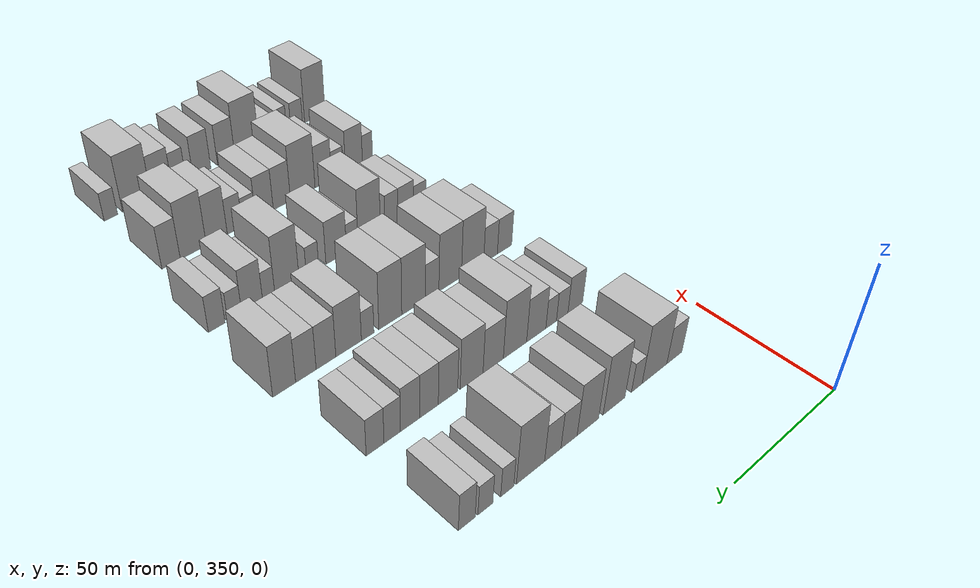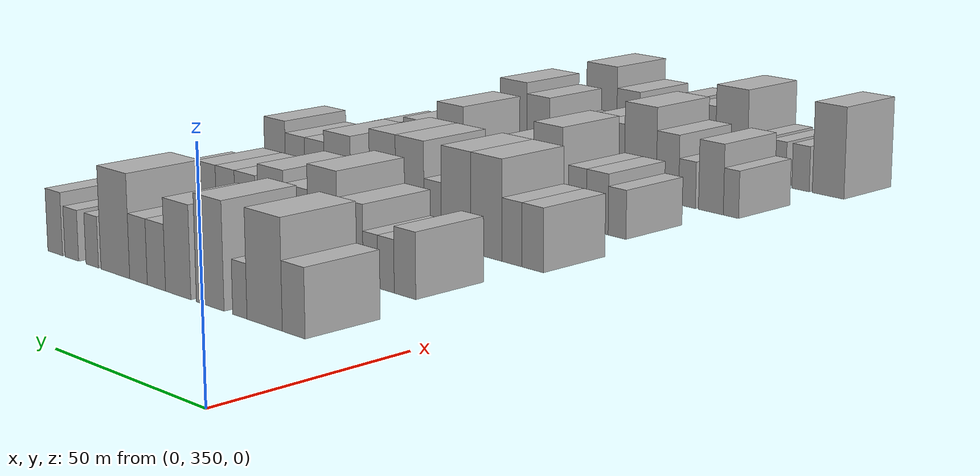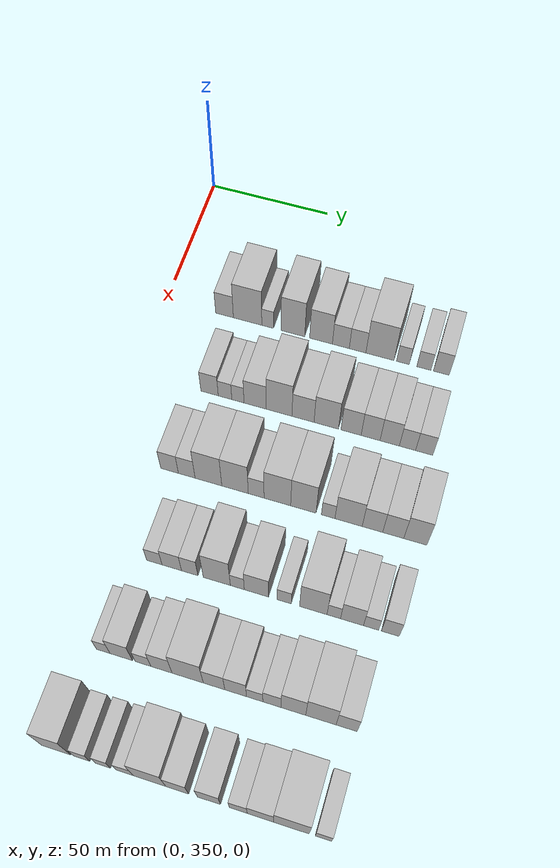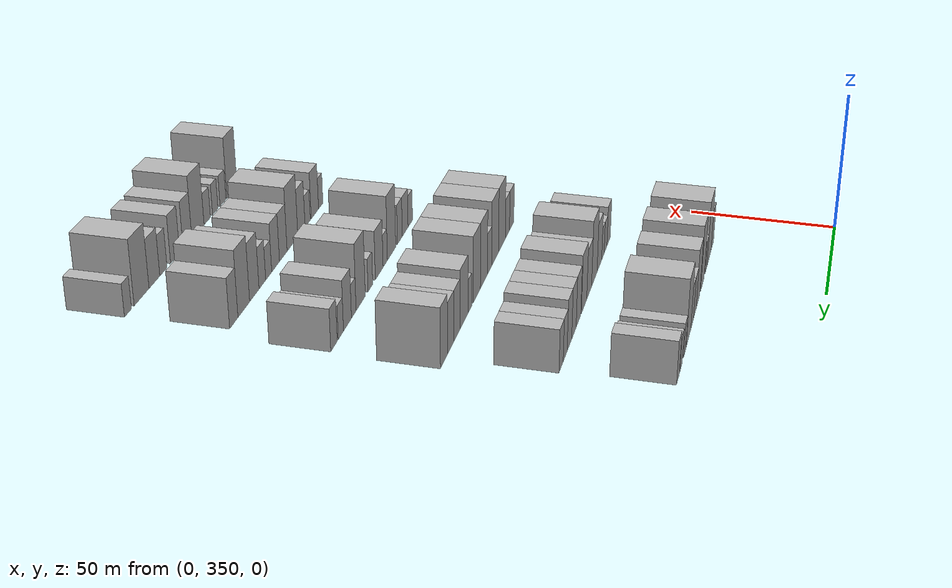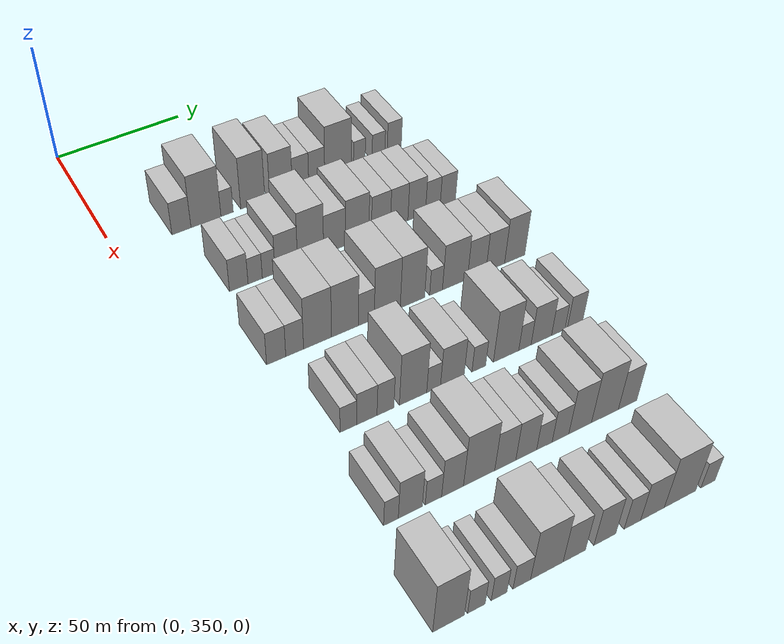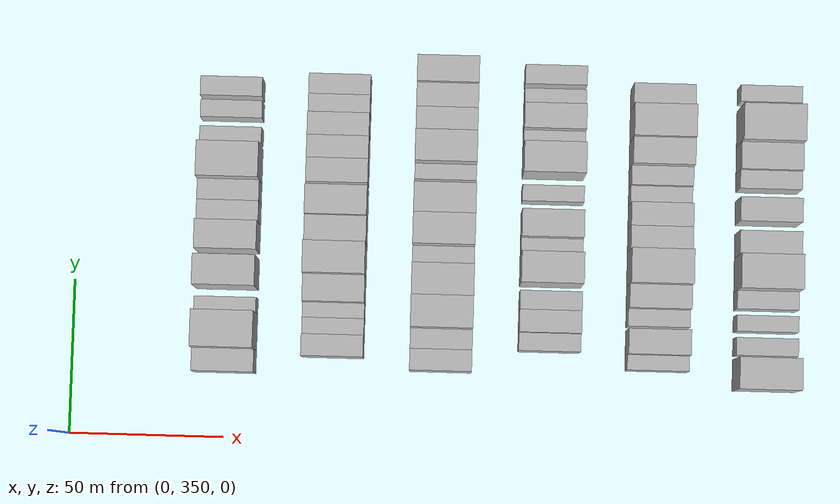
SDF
<sdf version="1.6">
 <world name="default">
  <model name="building_112">
   <static>1</static>
   <pose>50.0000 374.5638 0 0.000000 0.000000 0.000000</pose>
   <link name="link">
    <pose>0 0 7.50 0 0 0</pose>
    <collision name="collision"><geometry><box><size>20.0000 7.4098 15.0000</size></box></geometry></collision>
    <visual name="visual">
     <cast_shadows>0</cast_shadows>
     <geometry><box><size>20.0000 7.4098 15.0000</size></box></geometry>
     <material>
      <script>
       <uri>model://HANNAS_wall/materials/scripts</uri>
       <uri>model://HANNAS_wall/materials/textures</uri>
       <name>vrc/HANNAS_wall</name>
      </script>
     </material>
    </visual>
   </link>
  </model>
  <model name="building_113">
   <static>1</static>
   <pose>50.0000 384.1828 0 0.000000 0.000000 0.000000</pose>
   <link name="link">
    <pose>0 0 12.00 0 0 0</pose>
    <collision name="collision"><geometry><box><size>20.0000 11.8281 24.0000</size></box></geometry></collision>
    <visual name="visual">
     <cast_shadows>0</cast_shadows>
     <geometry><box><size>20.0000 11.8281 24.0000</size></box></geometry>
     <material>
      <script>
       <uri>model://HANNAS_wall/materials/scripts</uri>
       <uri>model://HANNAS_wall/materials/textures</uri>
       <name>vrc/HANNAS_wall</name>
      </script>
     </material>
    </visual>
   </link>
  </model>
  <model name="building_114">
   <static>1</static>
   <pose>50.0000 392.5576 0 0.000000 0.000000 0.000000</pose>
   <link name="link">
    <pose>0 0 6.00 0 0 0</pose>
    <collision name="collision"><geometry><box><size>20.0000 4.9214 12.0000</size></box></geometry></collision>
    <visual name="visual">
     <cast_shadows>0</cast_shadows>
     <geometry><box><size>20.0000 4.9214 12.0000</size></box></geometry>
     <material>
      <script>
       <uri>model://HANNAS_wall/materials/scripts</uri>
       <uri>model://HANNAS_wall/materials/textures</uri>
       <name>vrc/HANNAS_wall</name>
      </script>
     </material>
    </visual>
   </link>
  </model>
  <model name="building_115">
   <static>1</static>
   <pose>50.0000 402.9368 0 0.000000 0.000000 0.000000</pose>
   <link name="link">
    <pose>0 0 12.00 0 0 0</pose>
    <collision name="collision"><geometry><box><size>20.0000 9.8370 24.0000</size></box></geometry></collision>
    <visual name="visual">
     <cast_shadows>0</cast_shadows>
     <geometry><box><size>20.0000 9.8370 24.0000</size></box></geometry>
     <material>
      <script>
       <uri>model://HANNAS_wall/materials/scripts</uri>
       <uri>model://HANNAS_wall/materials/textures</uri>
       <name>vrc/HANNAS_wall</name>
      </script>
     </material>
    </visual>
   </link>
  </model>
  <model name="building_116">
   <static>1</static>
   <pose>50.0000 414.5056 0 0.000000 0.000000 0.000000</pose>
   <link name="link">
    <pose>0 0 10.50 0 0 0</pose>
    <collision name="collision"><geometry><box><size>20.0000 9.3008 21.0000</size></box></geometry></collision>
    <visual name="visual">
     <cast_shadows>0</cast_shadows>
     <geometry><box><size>20.0000 9.3008 21.0000</size></box></geometry>
     <material>
      <script>
       <uri>model://HANNAS_wall/materials/scripts</uri>
       <uri>model://HANNAS_wall/materials/textures</uri>
       <name>vrc/HANNAS_wall</name>
      </script>
     </material>
    </visual>
   </link>
  </model>
  <model name="building_117">
   <static>1</static>
   <pose>50.0000 422.5938 0 0.000000 0.000000 0.000000</pose>
   <link name="link">
    <pose>0 0 7.50 0 0 0</pose>
    <collision name="collision"><geometry><box><size>20.0000 6.8755 15.0000</size></box></geometry></collision>
    <visual name="visual">
     <cast_shadows>0</cast_shadows>
     <geometry><box><size>20.0000 6.8755 15.0000</size></box></geometry>
     <material>
      <script>
       <uri>model://HANNAS_wall/materials/scripts</uri>
       <uri>model://HANNAS_wall/materials/textures</uri>
       <name>vrc/HANNAS_wall</name>
      </script>
     </material>
    </visual>
   </link>
  </model>
  <model name="building_118">
   <static>1</static>
   <pose>50.0000 429.4094 0 0.000000 0.000000 0.000000</pose>
   <link name="link">
    <pose>0 0 7.50 0 0 0</pose>
    <collision name="collision"><geometry><box><size>20.0000 6.7556 15.0000</size></box></geometry></collision>
    <visual name="visual">
     <cast_shadows>0</cast_shadows>
     <geometry><box><size>20.0000 6.7556 15.0000</size></box></geometry>
     <material>
      <script>
       <uri>model://HANNAS_wall/materials/scripts</uri>
       <uri>model://HANNAS_wall/materials/textures</uri>
       <name>vrc/HANNAS_wall</name>
      </script>
     </material>
    </visual>
   </link>
  </model>
  <model name="building_119">
   <static>1</static>
   <pose>50.0000 438.4505 0 0.000000 0.000000 0.000000</pose>
   <link name="link">
    <pose>0 0 12.00 0 0 0</pose>
    <collision name="collision"><geometry><box><size>20.0000 11.3267 24.0000</size></box></geometry></collision>
    <visual name="visual">
     <cast_shadows>0</cast_shadows>
     <geometry><box><size>20.0000 11.3267 24.0000</size></box></geometry>
     <material>
      <script>
       <uri>model://HANNAS_wall/materials/scripts</uri>
       <uri>model://HANNAS_wall/materials/textures</uri>
       <name>vrc/HANNAS_wall</name>
      </script>
     </material>
    </visual>
   </link>
  </model>
  <model name="building_120">
   <static>1</static>
   <pose>50.0000 447.6629 0 0.000000 0.000000 0.000000</pose>
   <link name="link">
    <pose>0 0 6.00 0 0 0</pose>
    <collision name="collision"><geometry><box><size>20.0000 5.0982 12.0000</size></box></geometry></collision>
    <visual name="visual">
     <cast_shadows>0</cast_shadows>
     <geometry><box><size>20.0000 5.0982 12.0000</size></box></geometry>
     <material>
      <script>
       <uri>model://HANNAS_wall/materials/scripts</uri>
       <uri>model://HANNAS_wall/materials/textures</uri>
       <name>vrc/HANNAS_wall</name>
      </script>
     </material>
    </visual>
   </link>
  </model>
  <model name="building_121">
   <static>1</static>
   <pose>50.0000 456.0346 0 0.000000 0.000000 0.000000</pose>
   <link name="link">
    <pose>0 0 6.00 0 0 0</pose>
    <collision name="collision"><geometry><box><size>20.0000 5.6452 12.0000</size></box></geometry></collision>
    <visual name="visual">
     <cast_shadows>0</cast_shadows>
     <geometry><box><size>20.0000 5.6452 12.0000</size></box></geometry>
     <material>
      <script>
       <uri>model://HANNAS_wall/materials/scripts</uri>
       <uri>model://HANNAS_wall/materials/textures</uri>
       <name>vrc/HANNAS_wall</name>
      </script>
     </material>
    </visual>
   </link>
  </model>
  <model name="building_122">
   <static>1</static>
   <pose>50.0000 462.9753 0 0.000000 0.000000 0.000000</pose>
   <link name="link">
    <pose>0 0 7.50 0 0 0</pose>
    <collision name="collision"><geometry><box><size>20.0000 6.2363 15.0000</size></box></geometry></collision>
    <visual name="visual">
     <cast_shadows>0</cast_shadows>
     <geometry><box><size>20.0000 6.2363 15.0000</size></box></geometry>
     <material>
      <script>
       <uri>model://HANNAS_wall/materials/scripts</uri>
       <uri>model://HANNAS_wall/materials/textures</uri>
       <name>vrc/HANNAS_wall</name>
      </script>
     </material>
    </visual>
   </link>
  </model>
  <model name="building_241">
   <static>1</static>
   <pose>85.0000 380.1322 0 0.000000 0.000000 0.000000</pose>
   <link name="link">
    <pose>0 0 7.50 0 0 0</pose>
    <collision name="collision"><geometry><box><size>20.0000 7.0334 15.0000</size></box></geometry></collision>
    <visual name="visual">
     <cast_shadows>0</cast_shadows>
     <geometry><box><size>20.0000 7.0334 15.0000</size></box></geometry>
     <material>
      <script>
       <uri>model://HANNAS_wall/materials/scripts</uri>
       <uri>model://HANNAS_wall/materials/textures</uri>
       <name>vrc/HANNAS_wall</name>
      </script>
     </material>
    </visual>
   </link>
  </model>
  <model name="building_242">
   <static>1</static>
   <pose>85.0000 386.3754 0 0.000000 0.000000 0.000000</pose>
   <link name="link">
    <pose>0 0 6.00 0 0 0</pose>
    <collision name="collision"><geometry><box><size>20.0000 5.4530 12.0000</size></box></geometry></collision>
    <visual name="visual">
     <cast_shadows>0</cast_shadows>
     <geometry><box><size>20.0000 5.4530 12.0000</size></box></geometry>
     <material>
      <script>
       <uri>model://HANNAS_wall/materials/scripts</uri>
       <uri>model://HANNAS_wall/materials/textures</uri>
       <name>vrc/HANNAS_wall</name>
      </script>
     </material>
    </visual>
   </link>
  </model>
  <model name="building_243">
   <static>1</static>
   <pose>85.0000 391.5564 0 0.000000 0.000000 0.000000</pose>
   <link name="link">
    <pose>0 0 6.00 0 0 0</pose>
    <collision name="collision"><geometry><box><size>20.0000 4.9091 12.0000</size></box></geometry></collision>
    <visual name="visual">
     <cast_shadows>0</cast_shadows>
     <geometry><box><size>20.0000 4.9091 12.0000</size></box></geometry>
     <material>
      <script>
       <uri>model://HANNAS_wall/materials/scripts</uri>
       <uri>model://HANNAS_wall/materials/textures</uri>
       <name>vrc/HANNAS_wall</name>
      </script>
     </material>
    </visual>
   </link>
  </model>
  <model name="building_244">
   <static>1</static>
   <pose>85.0000 398.3999 0 0.000000 0.000000 0.000000</pose>
   <link name="link">
    <pose>0 0 9.00 0 0 0</pose>
    <collision name="collision"><geometry><box><size>20.0000 8.7778 18.0000</size></box></geometry></collision>
    <visual name="visual">
     <cast_shadows>0</cast_shadows>
     <geometry><box><size>20.0000 8.7778 18.0000</size></box></geometry>
     <material>
      <script>
       <uri>model://HANNAS_wall/materials/scripts</uri>
       <uri>model://HANNAS_wall/materials/textures</uri>
       <name>vrc/HANNAS_wall</name>
      </script>
     </material>
    </visual>
   </link>
  </model>
  <model name="building_245">
   <static>1</static>
   <pose>85.0000 407.9367 0 0.000000 0.000000 0.000000</pose>
   <link name="link">
    <pose>0 0 12.00 0 0 0</pose>
    <collision name="collision"><geometry><box><size>20.0000 10.2958 24.0000</size></box></geometry></collision>
    <visual name="visual">
     <cast_shadows>0</cast_shadows>
     <geometry><box><size>20.0000 10.2958 24.0000</size></box></geometry>
     <material>
      <script>
       <uri>model://HANNAS_wall/materials/scripts</uri>
       <uri>model://HANNAS_wall/materials/textures</uri>
       <name>vrc/HANNAS_wall</name>
      </script>
     </material>
    </visual>
   </link>
  </model>
  <model name="building_246">
   <static>1</static>
   <pose>85.0000 417.4528 0 0.000000 0.000000 0.000000</pose>
   <link name="link">
    <pose>0 0 9.00 0 0 0</pose>
    <collision name="collision"><geometry><box><size>20.0000 8.7366 18.0000</size></box></geometry></collision>
    <visual name="visual">
     <cast_shadows>0</cast_shadows>
     <geometry><box><size>20.0000 8.7366 18.0000</size></box></geometry>
     <material>
      <script>
       <uri>model://HANNAS_wall/materials/scripts</uri>
       <uri>model://HANNAS_wall/materials/textures</uri>
       <name>vrc/HANNAS_wall</name>
      </script>
     </material>
    </visual>
   </link>
  </model>
  <model name="building_247">
   <static>1</static>
   <pose>85.0000 426.6122 0 0.000000 0.000000 0.000000</pose>
   <link name="link">
    <pose>0 0 10.50 0 0 0</pose>
    <collision name="collision"><geometry><box><size>20.0000 9.5821 21.0000</size></box></geometry></collision>
    <visual name="visual">
     <cast_shadows>0</cast_shadows>
     <geometry><box><size>20.0000 9.5821 21.0000</size></box></geometry>
     <material>
      <script>
       <uri>model://HANNAS_wall/materials/scripts</uri>
       <uri>model://HANNAS_wall/materials/textures</uri>
       <name>vrc/HANNAS_wall</name>
      </script>
     </material>
    </visual>
   </link>
  </model>
  <model name="building_248">
   <static>1</static>
   <pose>85.0000 436.3314 0 0.000000 0.000000 0.000000</pose>
   <link name="link">
    <pose>0 0 9.00 0 0 0</pose>
    <collision name="collision"><geometry><box><size>20.0000 7.8563 18.0000</size></box></geometry></collision>
    <visual name="visual">
     <cast_shadows>0</cast_shadows>
     <geometry><box><size>20.0000 7.8563 18.0000</size></box></geometry>
     <material>
      <script>
       <uri>model://HANNAS_wall/materials/scripts</uri>
       <uri>model://HANNAS_wall/materials/textures</uri>
       <name>vrc/HANNAS_wall</name>
      </script>
     </material>
    </visual>
   </link>
  </model>
  <model name="building_249">
   <static>1</static>
   <pose>85.0000 443.9352 0 0.000000 0.000000 0.000000</pose>
   <link name="link">
    <pose>0 0 9.00 0 0 0</pose>
    <collision name="collision"><geometry><box><size>20.0000 7.3513 18.0000</size></box></geometry></collision>
    <visual name="visual">
     <cast_shadows>0</cast_shadows>
     <geometry><box><size>20.0000 7.3513 18.0000</size></box></geometry>
     <material>
      <script>
       <uri>model://HANNAS_wall/materials/scripts</uri>
       <uri>model://HANNAS_wall/materials/textures</uri>
       <name>vrc/HANNAS_wall</name>
      </script>
     </material>
    </visual>
   </link>
  </model>
  <model name="building_250">
   <static>1</static>
   <pose>85.0000 451.3383 0 0.000000 0.000000 0.000000</pose>
   <link name="link">
    <pose>0 0 9.00 0 0 0</pose>
    <collision name="collision"><geometry><box><size>20.0000 7.4550 18.0000</size></box></geometry></collision>
    <visual name="visual">
     <cast_shadows>0</cast_shadows>
     <geometry><box><size>20.0000 7.4550 18.0000</size></box></geometry>
     <material>
      <script>
       <uri>model://HANNAS_wall/materials/scripts</uri>
       <uri>model://HANNAS_wall/materials/textures</uri>
       <name>vrc/HANNAS_wall</name>
      </script>
     </material>
    </visual>
   </link>
  </model>
  <model name="building_251">
   <static>1</static>
   <pose>85.0000 458.1806 0 0.000000 0.000000 0.000000</pose>
   <link name="link">
    <pose>0 0 7.50 0 0 0</pose>
    <collision name="collision"><geometry><box><size>20.0000 6.2295 15.0000</size></box></geometry></collision>
    <visual name="visual">
     <cast_shadows>0</cast_shadows>
     <geometry><box><size>20.0000 6.2295 15.0000</size></box></geometry>
     <material>
      <script>
       <uri>model://HANNAS_wall/materials/scripts</uri>
       <uri>model://HANNAS_wall/materials/textures</uri>
       <name>vrc/HANNAS_wall</name>
      </script>
     </material>
    </visual>
   </link>
  </model>
  <model name="building_252">
   <static>1</static>
   <pose>85.0000 464.5963 0 0.000000 0.000000 0.000000</pose>
   <link name="link">
    <pose>0 0 7.50 0 0 0</pose>
    <collision name="collision"><geometry><box><size>20.0000 6.6018 15.0000</size></box></geometry></collision>
    <visual name="visual">
     <cast_shadows>0</cast_shadows>
     <geometry><box><size>20.0000 6.6018 15.0000</size></box></geometry>
     <material>
      <script>
       <uri>model://HANNAS_wall/materials/scripts</uri>
       <uri>model://HANNAS_wall/materials/textures</uri>
       <name>vrc/HANNAS_wall</name>
      </script>
     </material>
    </visual>
   </link>
  </model>
  <model name="building_372">
   <static>1</static>
   <pose>120.0000 376.3832 0 0.000000 0.000000 0.000000</pose>
   <link name="link">
    <pose>0 0 7.50 0 0 0</pose>
    <collision name="collision"><geometry><box><size>20.0000 6.9399 15.0000</size></box></geometry></collision>
    <visual name="visual">
     <cast_shadows>0</cast_shadows>
     <geometry><box><size>20.0000 6.9399 15.0000</size></box></geometry>
     <material>
      <script>
       <uri>model://HANNAS_wall/materials/scripts</uri>
       <uri>model://HANNAS_wall/materials/textures</uri>
       <name>vrc/HANNAS_wall</name>
      </script>
     </material>
    </visual>
   </link>
  </model>
  <model name="building_373">
   <static>1</static>
   <pose>120.0000 383.1151 0 0.000000 0.000000 0.000000</pose>
   <link name="link">
    <pose>0 0 7.50 0 0 0</pose>
    <collision name="collision"><geometry><box><size>20.0000 6.5238 15.0000</size></box></geometry></collision>
    <visual name="visual">
     <cast_shadows>0</cast_shadows>
     <geometry><box><size>20.0000 6.5238 15.0000</size></box></geometry>
     <material>
      <script>
       <uri>model://HANNAS_wall/materials/scripts</uri>
       <uri>model://HANNAS_wall/materials/textures</uri>
       <name>vrc/HANNAS_wall</name>
      </script>
     </material>
    </visual>
   </link>
  </model>
  <model name="building_374">
   <static>1</static>
   <pose>120.0000 391.5605 0 0.000000 0.000000 0.000000</pose>
   <link name="link">
    <pose>0 0 12.00 0 0 0</pose>
    <collision name="collision"><geometry><box><size>20.0000 10.3670 24.0000</size></box></geometry></collision>
    <visual name="visual">
     <cast_shadows>0</cast_shadows>
     <geometry><box><size>20.0000 10.3670 24.0000</size></box></geometry>
     <material>
      <script>
       <uri>model://HANNAS_wall/materials/scripts</uri>
       <uri>model://HANNAS_wall/materials/textures</uri>
       <name>vrc/HANNAS_wall</name>
      </script>
     </material>
    </visual>
   </link>
  </model>
  <model name="building_375">
   <static>1</static>
   <pose>120.0000 401.8419 0 0.000000 0.000000 0.000000</pose>
   <link name="link">
    <pose>0 0 12.00 0 0 0</pose>
    <collision name="collision"><geometry><box><size>20.0000 10.1957 24.0000</size></box></geometry></collision>
    <visual name="visual">
     <cast_shadows>0</cast_shadows>
     <geometry><box><size>20.0000 10.1957 24.0000</size></box></geometry>
     <material>
      <script>
       <uri>model://HANNAS_wall/materials/scripts</uri>
       <uri>model://HANNAS_wall/materials/textures</uri>
       <name>vrc/HANNAS_wall</name>
      </script>
     </material>
    </visual>
   </link>
  </model>
  <model name="building_376">
   <static>1</static>
   <pose>120.0000 409.9647 0 0.000000 0.000000 0.000000</pose>
   <link name="link">
    <pose>0 0 7.50 0 0 0</pose>
    <collision name="collision"><geometry><box><size>20.0000 6.0499 15.0000</size></box></geometry></collision>
    <visual name="visual">
     <cast_shadows>0</cast_shadows>
     <geometry><box><size>20.0000 6.0499 15.0000</size></box></geometry>
     <material>
      <script>
       <uri>model://HANNAS_wall/materials/scripts</uri>
       <uri>model://HANNAS_wall/materials/textures</uri>
       <name>vrc/HANNAS_wall</name>
      </script>
     </material>
    </visual>
   </link>
  </model>
  <model name="building_377">
   <static>1</static>
   <pose>120.0000 418.0530 0 0.000000 0.000000 0.000000</pose>
   <link name="link">
    <pose>0 0 12.00 0 0 0</pose>
    <collision name="collision"><geometry><box><size>20.0000 10.1268 24.0000</size></box></geometry></collision>
    <visual name="visual">
     <cast_shadows>0</cast_shadows>
     <geometry><box><size>20.0000 10.1268 24.0000</size></box></geometry>
     <material>
      <script>
       <uri>model://HANNAS_wall/materials/scripts</uri>
       <uri>model://HANNAS_wall/materials/textures</uri>
       <name>vrc/HANNAS_wall</name>
      </script>
     </material>
    </visual>
   </link>
  </model>
  <model name="building_378">
   <static>1</static>
   <pose>120.0000 427.9381 0 0.000000 0.000000 0.000000</pose>
   <link name="link">
    <pose>0 0 12.00 0 0 0</pose>
    <collision name="collision"><geometry><box><size>20.0000 9.6433 24.0000</size></box></geometry></collision>
    <visual name="visual">
     <cast_shadows>0</cast_shadows>
     <geometry><box><size>20.0000 9.6433 24.0000</size></box></geometry>
     <material>
      <script>
       <uri>model://HANNAS_wall/materials/scripts</uri>
       <uri>model://HANNAS_wall/materials/textures</uri>
       <name>vrc/HANNAS_wall</name>
      </script>
     </material>
    </visual>
   </link>
  </model>
  <model name="building_379">
   <static>1</static>
   <pose>120.0000 437.3192 0 0.000000 0.000000 0.000000</pose>
   <link name="link">
    <pose>0 0 6.00 0 0 0</pose>
    <collision name="collision"><geometry><box><size>20.0000 5.1189 12.0000</size></box></geometry></collision>
    <visual name="visual">
     <cast_shadows>0</cast_shadows>
     <geometry><box><size>20.0000 5.1189 12.0000</size></box></geometry>
     <material>
      <script>
       <uri>model://HANNAS_wall/materials/scripts</uri>
       <uri>model://HANNAS_wall/materials/textures</uri>
       <name>vrc/HANNAS_wall</name>
      </script>
     </material>
    </visual>
   </link>
  </model>
  <model name="building_380">
   <static>1</static>
   <pose>120.0000 444.9828 0 0.000000 0.000000 0.000000</pose>
   <link name="link">
    <pose>0 0 10.50 0 0 0</pose>
    <collision name="collision"><geometry><box><size>20.0000 10.2082 21.0000</size></box></geometry></collision>
    <visual name="visual">
     <cast_shadows>0</cast_shadows>
     <geometry><box><size>20.0000 10.2082 21.0000</size></box></geometry>
     <material>
      <script>
       <uri>model://HANNAS_wall/materials/scripts</uri>
       <uri>model://HANNAS_wall/materials/textures</uri>
       <name>vrc/HANNAS_wall</name>
      </script>
     </material>
    </visual>
   </link>
  </model>
  <model name="building_381">
   <static>1</static>
   <pose>120.0000 453.9038 0 0.000000 0.000000 0.000000</pose>
   <link name="link">
    <pose>0 0 9.00 0 0 0</pose>
    <collision name="collision"><geometry><box><size>20.0000 7.6338 18.0000</size></box></geometry></collision>
    <visual name="visual">
     <cast_shadows>0</cast_shadows>
     <geometry><box><size>20.0000 7.6338 18.0000</size></box></geometry>
     <material>
      <script>
       <uri>model://HANNAS_wall/materials/scripts</uri>
       <uri>model://HANNAS_wall/materials/textures</uri>
       <name>vrc/HANNAS_wall</name>
      </script>
     </material>
    </visual>
   </link>
  </model>
  <model name="building_382">
   <static>1</static>
   <pose>120.0000 461.6109 0 0.000000 0.000000 0.000000</pose>
   <link name="link">
    <pose>0 0 9.00 0 0 0</pose>
    <collision name="collision"><geometry><box><size>20.0000 7.7805 18.0000</size></box></geometry></collision>
    <visual name="visual">
     <cast_shadows>0</cast_shadows>
     <geometry><box><size>20.0000 7.7805 18.0000</size></box></geometry>
     <material>
      <script>
       <uri>model://HANNAS_wall/materials/scripts</uri>
       <uri>model://HANNAS_wall/materials/textures</uri>
       <name>vrc/HANNAS_wall</name>
      </script>
     </material>
    </visual>
   </link>
  </model>
  <model name="building_383">
   <static>1</static>
   <pose>120.0000 469.7615 0 0.000000 0.000000 0.000000</pose>
   <link name="link">
    <pose>0 0 10.50 0 0 0</pose>
    <collision name="collision"><geometry><box><size>20.0000 8.5207 21.0000</size></box></geometry></collision>
    <visual name="visual">
     <cast_shadows>0</cast_shadows>
     <geometry><box><size>20.0000 8.5207 21.0000</size></box></geometry>
     <material>
      <script>
       <uri>model://HANNAS_wall/materials/scripts</uri>
       <uri>model://HANNAS_wall/materials/textures</uri>
       <name>vrc/HANNAS_wall</name>
      </script>
     </material>
    </visual>
   </link>
  </model>
  <model name="building_503">
   <static>1</static>
   <pose>155.0000 383.1769 0 0.000000 0.000000 0.000000</pose>
   <link name="link">
    <pose>0 0 6.00 0 0 0</pose>
    <collision name="collision"><geometry><box><size>20.0000 5.8317 12.0000</size></box></geometry></collision>
    <visual name="visual">
     <cast_shadows>0</cast_shadows>
     <geometry><box><size>20.0000 5.8317 12.0000</size></box></geometry>
     <material>
      <script>
       <uri>model://HANNAS_wall/materials/scripts</uri>
       <uri>model://HANNAS_wall/materials/textures</uri>
       <name>vrc/HANNAS_wall</name>
      </script>
     </material>
    </visual>
   </link>
  </model>
  <model name="building_504">
   <static>1</static>
   <pose>155.0000 389.7508 0 0.000000 0.000000 0.000000</pose>
   <link name="link">
    <pose>0 0 7.50 0 0 0</pose>
    <collision name="collision"><geometry><box><size>20.0000 7.3161 15.0000</size></box></geometry></collision>
    <visual name="visual">
     <cast_shadows>0</cast_shadows>
     <geometry><box><size>20.0000 7.3161 15.0000</size></box></geometry>
     <material>
      <script>
       <uri>model://HANNAS_wall/materials/scripts</uri>
       <uri>model://HANNAS_wall/materials/textures</uri>
       <name>vrc/HANNAS_wall</name>
      </script>
     </material>
    </visual>
   </link>
  </model>
  <model name="building_505">
   <static>1</static>
   <pose>155.0000 396.4655 0 0.000000 0.000000 0.000000</pose>
   <link name="link">
    <pose>0 0 7.50 0 0 0</pose>
    <collision name="collision"><geometry><box><size>20.0000 6.1133 15.0000</size></box></geometry></collision>
    <visual name="visual">
     <cast_shadows>0</cast_shadows>
     <geometry><box><size>20.0000 6.1133 15.0000</size></box></geometry>
     <material>
      <script>
       <uri>model://HANNAS_wall/materials/scripts</uri>
       <uri>model://HANNAS_wall/materials/textures</uri>
       <name>vrc/HANNAS_wall</name>
      </script>
     </material>
    </visual>
   </link>
  </model>
  <model name="building_506">
   <static>1</static>
   <pose>155.0000 406.5471 0 0.000000 0.000000 0.000000</pose>
   <link name="link">
    <pose>0 0 12.00 0 0 0</pose>
    <collision name="collision"><geometry><box><size>20.0000 10.0500 24.0000</size></box></geometry></collision>
    <visual name="visual">
     <cast_shadows>0</cast_shadows>
     <geometry><box><size>20.0000 10.0500 24.0000</size></box></geometry>
     <material>
      <script>
       <uri>model://HANNAS_wall/materials/scripts</uri>
       <uri>model://HANNAS_wall/materials/textures</uri>
       <name>vrc/HANNAS_wall</name>
      </script>
     </material>
    </visual>
   </link>
  </model>
  <model name="building_507">
   <static>1</static>
   <pose>155.0000 414.1391 0 0.000000 0.000000 0.000000</pose>
   <link name="link">
    <pose>0 0 6.00 0 0 0</pose>
    <collision name="collision"><geometry><box><size>20.0000 5.1340 12.0000</size></box></geometry></collision>
    <visual name="visual">
     <cast_shadows>0</cast_shadows>
     <geometry><box><size>20.0000 5.1340 12.0000</size></box></geometry>
     <material>
      <script>
       <uri>model://HANNAS_wall/materials/scripts</uri>
       <uri>model://HANNAS_wall/materials/textures</uri>
       <name>vrc/HANNAS_wall</name>
      </script>
     </material>
    </visual>
   </link>
  </model>
  <model name="building_508">
   <static>1</static>
   <pose>155.0000 421.1709 0 0.000000 0.000000 0.000000</pose>
   <link name="link">
    <pose>0 0 9.00 0 0 0</pose>
    <collision name="collision"><geometry><box><size>20.0000 8.9297 18.0000</size></box></geometry></collision>
    <visual name="visual">
     <cast_shadows>0</cast_shadows>
     <geometry><box><size>20.0000 8.9297 18.0000</size></box></geometry>
     <material>
      <script>
       <uri>model://HANNAS_wall/materials/scripts</uri>
       <uri>model://HANNAS_wall/materials/textures</uri>
       <name>vrc/HANNAS_wall</name>
      </script>
     </material>
    </visual>
   </link>
  </model>
  <model name="building_509">
   <static>1</static>
   <pose>155.0000 431.2673 0 0.000000 0.000000 0.000000</pose>
   <link name="link">
    <pose>0 0 6.00 0 0 0</pose>
    <collision name="collision"><geometry><box><size>20.0000 5.2630 12.0000</size></box></geometry></collision>
    <visual name="visual">
     <cast_shadows>0</cast_shadows>
     <geometry><box><size>20.0000 5.2630 12.0000</size></box></geometry>
     <material>
      <script>
       <uri>model://HANNAS_wall/materials/scripts</uri>
       <uri>model://HANNAS_wall/materials/textures</uri>
       <name>vrc/HANNAS_wall</name>
      </script>
     </material>
    </visual>
   </link>
  </model>
  <model name="building_510">
   <static>1</static>
   <pose>155.0000 441.8738 0 0.000000 0.000000 0.000000</pose>
   <link name="link">
    <pose>0 0 12.00 0 0 0</pose>
    <collision name="collision"><geometry><box><size>20.0000 9.9502 24.0000</size></box></geometry></collision>
    <visual name="visual">
     <cast_shadows>0</cast_shadows>
     <geometry><box><size>20.0000 9.9502 24.0000</size></box></geometry>
     <material>
      <script>
       <uri>model://HANNAS_wall/materials/scripts</uri>
       <uri>model://HANNAS_wall/materials/textures</uri>
       <name>vrc/HANNAS_wall</name>
      </script>
     </material>
    </visual>
   </link>
  </model>
  <model name="building_511">
   <static>1</static>
   <pose>155.0000 449.2796 0 0.000000 0.000000 0.000000</pose>
   <link name="link">
    <pose>0 0 6.00 0 0 0</pose>
    <collision name="collision"><geometry><box><size>20.0000 4.8613 12.0000</size></box></geometry></collision>
    <visual name="visual">
     <cast_shadows>0</cast_shadows>
     <geometry><box><size>20.0000 4.8613 12.0000</size></box></geometry>
     <material>
      <script>
       <uri>model://HANNAS_wall/materials/scripts</uri>
       <uri>model://HANNAS_wall/materials/textures</uri>
       <name>vrc/HANNAS_wall</name>
      </script>
     </material>
    </visual>
   </link>
  </model>
  <model name="building_512">
   <static>1</static>
   <pose>155.0000 455.8241 0 0.000000 0.000000 0.000000</pose>
   <link name="link">
    <pose>0 0 9.00 0 0 0</pose>
    <collision name="collision"><geometry><box><size>20.0000 8.2276 18.0000</size></box></geometry></collision>
    <visual name="visual">
     <cast_shadows>0</cast_shadows>
     <geometry><box><size>20.0000 8.2276 18.0000</size></box></geometry>
     <material>
      <script>
       <uri>model://HANNAS_wall/materials/scripts</uri>
       <uri>model://HANNAS_wall/materials/textures</uri>
       <name>vrc/HANNAS_wall</name>
      </script>
     </material>
    </visual>
   </link>
  </model>
  <model name="building_513">
   <static>1</static>
   <pose>155.0000 462.6363 0 0.000000 0.000000 0.000000</pose>
   <link name="link">
    <pose>0 0 6.00 0 0 0</pose>
    <collision name="collision"><geometry><box><size>20.0000 5.3967 12.0000</size></box></geometry></collision>
    <visual name="visual">
     <cast_shadows>0</cast_shadows>
     <geometry><box><size>20.0000 5.3967 12.0000</size></box></geometry>
     <material>
      <script>
       <uri>model://HANNAS_wall/materials/scripts</uri>
       <uri>model://HANNAS_wall/materials/textures</uri>
       <name>vrc/HANNAS_wall</name>
      </script>
     </material>
    </visual>
   </link>
  </model>
  <model name="building_514">
   <static>1</static>
   <pose>155.0000 469.4903 0 0.000000 0.000000 0.000000</pose>
   <link name="link">
    <pose>0 0 7.50 0 0 0</pose>
    <collision name="collision"><geometry><box><size>20.0000 6.3113 15.0000</size></box></geometry></collision>
    <visual name="visual">
     <cast_shadows>0</cast_shadows>
     <geometry><box><size>20.0000 6.3113 15.0000</size></box></geometry>
     <material>
      <script>
       <uri>model://HANNAS_wall/materials/scripts</uri>
       <uri>model://HANNAS_wall/materials/textures</uri>
       <name>vrc/HANNAS_wall</name>
      </script>
     </material>
    </visual>
   </link>
  </model>
  <model name="building_629">
   <static>1</static>
   <pose>190.0000 377.4236 0 0.000000 0.000000 0.000000</pose>
   <link name="link">
    <pose>0 0 6.00 0 0 0</pose>
    <collision name="collision"><geometry><box><size>20.0000 4.9495 12.0000</size></box></geometry></collision>
    <visual name="visual">
     <cast_shadows>0</cast_shadows>
     <geometry><box><size>20.0000 4.9495 12.0000</size></box></geometry>
     <material>
      <script>
       <uri>model://HANNAS_wall/materials/scripts</uri>
       <uri>model://HANNAS_wall/materials/textures</uri>
       <name>vrc/HANNAS_wall</name>
      </script>
     </material>
    </visual>
   </link>
  </model>
  <model name="building_630">
   <static>1</static>
   <pose>190.0000 383.9739 0 0.000000 0.000000 0.000000</pose>
   <link name="link">
    <pose>0 0 9.00 0 0 0</pose>
    <collision name="collision"><geometry><box><size>20.0000 8.1513 18.0000</size></box></geometry></collision>
    <visual name="visual">
     <cast_shadows>0</cast_shadows>
     <geometry><box><size>20.0000 8.1513 18.0000</size></box></geometry>
     <material>
      <script>
       <uri>model://HANNAS_wall/materials/scripts</uri>
       <uri>model://HANNAS_wall/materials/textures</uri>
       <name>vrc/HANNAS_wall</name>
      </script>
     </material>
    </visual>
   </link>
  </model>
  <model name="building_631">
   <static>1</static>
   <pose>190.0000 391.8775 0 0.000000 0.000000 0.000000</pose>
   <link name="link">
    <pose>0 0 6.00 0 0 0</pose>
    <collision name="collision"><geometry><box><size>20.0000 5.6558 12.0000</size></box></geometry></collision>
    <visual name="visual">
     <cast_shadows>0</cast_shadows>
     <geometry><box><size>20.0000 5.6558 12.0000</size></box></geometry>
     <material>
      <script>
       <uri>model://HANNAS_wall/materials/scripts</uri>
       <uri>model://HANNAS_wall/materials/textures</uri>
       <name>vrc/HANNAS_wall</name>
      </script>
     </material>
    </visual>
   </link>
  </model>
  <model name="building_632">
   <static>1</static>
   <pose>190.0000 398.5282 0 0.000000 0.000000 0.000000</pose>
   <link name="link">
    <pose>0 0 9.00 0 0 0</pose>
    <collision name="collision"><geometry><box><size>20.0000 7.6456 18.0000</size></box></geometry></collision>
    <visual name="visual">
     <cast_shadows>0</cast_shadows>
     <geometry><box><size>20.0000 7.6456 18.0000</size></box></geometry>
     <material>
      <script>
       <uri>model://HANNAS_wall/materials/scripts</uri>
       <uri>model://HANNAS_wall/materials/textures</uri>
       <name>vrc/HANNAS_wall</name>
      </script>
     </material>
    </visual>
   </link>
  </model>
  <model name="building_633">
   <static>1</static>
   <pose>190.0000 407.9203 0 0.000000 0.000000 0.000000</pose>
   <link name="link">
    <pose>0 0 12.00 0 0 0</pose>
    <collision name="collision"><geometry><box><size>20.0000 11.1386 24.0000</size></box></geometry></collision>
    <visual name="visual">
     <cast_shadows>0</cast_shadows>
     <geometry><box><size>20.0000 11.1386 24.0000</size></box></geometry>
     <material>
      <script>
       <uri>model://HANNAS_wall/materials/scripts</uri>
       <uri>model://HANNAS_wall/materials/textures</uri>
       <name>vrc/HANNAS_wall</name>
      </script>
     </material>
    </visual>
   </link>
  </model>
  <model name="building_634">
   <static>1</static>
   <pose>190.0000 417.3067 0 0.000000 0.000000 0.000000</pose>
   <link name="link">
    <pose>0 0 9.00 0 0 0</pose>
    <collision name="collision"><geometry><box><size>20.0000 7.6341 18.0000</size></box></geometry></collision>
    <visual name="visual">
     <cast_shadows>0</cast_shadows>
     <geometry><box><size>20.0000 7.6341 18.0000</size></box></geometry>
     <material>
      <script>
       <uri>model://HANNAS_wall/materials/scripts</uri>
       <uri>model://HANNAS_wall/materials/textures</uri>
       <name>vrc/HANNAS_wall</name>
      </script>
     </material>
    </visual>
   </link>
  </model>
  <model name="building_635">
   <static>1</static>
   <pose>190.0000 424.9477 0 0.000000 0.000000 0.000000</pose>
   <link name="link">
    <pose>0 0 9.00 0 0 0</pose>
    <collision name="collision"><geometry><box><size>20.0000 7.6480 18.0000</size></box></geometry></collision>
    <visual name="visual">
     <cast_shadows>0</cast_shadows>
     <geometry><box><size>20.0000 7.6480 18.0000</size></box></geometry>
     <material>
      <script>
       <uri>model://HANNAS_wall/materials/scripts</uri>
       <uri>model://HANNAS_wall/materials/textures</uri>
       <name>vrc/HANNAS_wall</name>
      </script>
     </material>
    </visual>
   </link>
  </model>
  <model name="building_636">
   <static>1</static>
   <pose>190.0000 431.6495 0 0.000000 0.000000 0.000000</pose>
   <link name="link">
    <pose>0 0 6.00 0 0 0</pose>
    <collision name="collision"><geometry><box><size>20.0000 5.7555 12.0000</size></box></geometry></collision>
    <visual name="visual">
     <cast_shadows>0</cast_shadows>
     <geometry><box><size>20.0000 5.7555 12.0000</size></box></geometry>
     <material>
      <script>
       <uri>model://HANNAS_wall/materials/scripts</uri>
       <uri>model://HANNAS_wall/materials/textures</uri>
       <name>vrc/HANNAS_wall</name>
      </script>
     </material>
    </visual>
   </link>
  </model>
  <model name="building_637">
   <static>1</static>
   <pose>190.0000 437.6704 0 0.000000 0.000000 0.000000</pose>
   <link name="link">
    <pose>0 0 7.50 0 0 0</pose>
    <collision name="collision"><geometry><box><size>20.0000 6.2862 15.0000</size></box></geometry></collision>
    <visual name="visual">
     <cast_shadows>0</cast_shadows>
     <geometry><box><size>20.0000 6.2862 15.0000</size></box></geometry>
     <material>
      <script>
       <uri>model://HANNAS_wall/materials/scripts</uri>
       <uri>model://HANNAS_wall/materials/textures</uri>
       <name>vrc/HANNAS_wall</name>
      </script>
     </material>
    </visual>
   </link>
  </model>
  <model name="building_638">
   <static>1</static>
   <pose>190.0000 445.1308 0 0.000000 0.000000 0.000000</pose>
   <link name="link">
    <pose>0 0 10.50 0 0 0</pose>
    <collision name="collision"><geometry><box><size>20.0000 8.6346 21.0000</size></box></geometry></collision>
    <visual name="visual">
     <cast_shadows>0</cast_shadows>
     <geometry><box><size>20.0000 8.6346 21.0000</size></box></geometry>
     <material>
      <script>
       <uri>model://HANNAS_wall/materials/scripts</uri>
       <uri>model://HANNAS_wall/materials/textures</uri>
       <name>vrc/HANNAS_wall</name>
      </script>
     </material>
    </visual>
   </link>
  </model>
  <model name="building_639">
   <static>1</static>
   <pose>190.0000 454.6790 0 0.000000 0.000000 0.000000</pose>
   <link name="link">
    <pose>0 0 12.00 0 0 0</pose>
    <collision name="collision"><geometry><box><size>20.0000 10.4618 24.0000</size></box></geometry></collision>
    <visual name="visual">
     <cast_shadows>0</cast_shadows>
     <geometry><box><size>20.0000 10.4618 24.0000</size></box></geometry>
     <material>
      <script>
       <uri>model://HANNAS_wall/materials/scripts</uri>
       <uri>model://HANNAS_wall/materials/textures</uri>
       <name>vrc/HANNAS_wall</name>
      </script>
     </material>
    </visual>
   </link>
  </model>
  <model name="building_640">
   <static>1</static>
   <pose>190.0000 463.5284 0 0.000000 0.000000 0.000000</pose>
   <link name="link">
    <pose>0 0 9.00 0 0 0</pose>
    <collision name="collision"><geometry><box><size>20.0000 7.2370 18.0000</size></box></geometry></collision>
    <visual name="visual">
     <cast_shadows>0</cast_shadows>
     <geometry><box><size>20.0000 7.2370 18.0000</size></box></geometry>
     <material>
      <script>
       <uri>model://HANNAS_wall/materials/scripts</uri>
       <uri>model://HANNAS_wall/materials/textures</uri>
       <name>vrc/HANNAS_wall</name>
      </script>
     </material>
    </visual>
   </link>
  </model>
  <model name="building_756">
   <static>1</static>
   <pose>225.0000 374.5324 0 0.000000 0.000000 0.000000</pose>
   <link name="link">
    <pose>0 0 12.00 0 0 0</pose>
    <collision name="collision"><geometry><box><size>20.0000 10.1927 24.0000</size></box></geometry></collision>
    <visual name="visual">
     <cast_shadows>0</cast_shadows>
     <geometry><box><size>20.0000 10.1927 24.0000</size></box></geometry>
     <material>
      <script>
       <uri>model://HANNAS_wall/materials/scripts</uri>
       <uri>model://HANNAS_wall/materials/textures</uri>
       <name>vrc/HANNAS_wall</name>
      </script>
     </material>
    </visual>
   </link>
  </model>
  <model name="building_757">
   <static>1</static>
   <pose>225.0000 383.5061 0 0.000000 0.000000 0.000000</pose>
   <link name="link">
    <pose>0 0 6.00 0 0 0</pose>
    <collision name="collision"><geometry><box><size>20.0000 5.7547 12.0000</size></box></geometry></collision>
    <visual name="visual">
     <cast_shadows>0</cast_shadows>
     <geometry><box><size>20.0000 5.7547 12.0000</size></box></geometry>
     <material>
      <script>
       <uri>model://HANNAS_wall/materials/scripts</uri>
       <uri>model://HANNAS_wall/materials/textures</uri>
       <name>vrc/HANNAS_wall</name>
      </script>
     </material>
    </visual>
   </link>
  </model>
  <model name="building_758">
   <static>1</static>
   <pose>225.0000 390.9923 0 0.000000 0.000000 0.000000</pose>
   <link name="link">
    <pose>0 0 6.00 0 0 0</pose>
    <collision name="collision"><geometry><box><size>20.0000 5.2177 12.0000</size></box></geometry></collision>
    <visual name="visual">
     <cast_shadows>0</cast_shadows>
     <geometry><box><size>20.0000 5.2177 12.0000</size></box></geometry>
     <material>
      <script>
       <uri>model://HANNAS_wall/materials/scripts</uri>
       <uri>model://HANNAS_wall/materials/textures</uri>
       <name>vrc/HANNAS_wall</name>
      </script>
     </material>
    </visual>
   </link>
  </model>
  <model name="building_759">
   <static>1</static>
   <pose>225.0000 398.5726 0 0.000000 0.000000 0.000000</pose>
   <link name="link">
    <pose>0 0 6.00 0 0 0</pose>
    <collision name="collision"><geometry><box><size>20.0000 5.9429 12.0000</size></box></geometry></collision>
    <visual name="visual">
     <cast_shadows>0</cast_shadows>
     <geometry><box><size>20.0000 5.9429 12.0000</size></box></geometry>
     <material>
      <script>
       <uri>model://HANNAS_wall/materials/scripts</uri>
       <uri>model://HANNAS_wall/materials/textures</uri>
       <name>vrc/HANNAS_wall</name>
      </script>
     </material>
    </visual>
   </link>
  </model>
  <model name="building_760">
   <static>1</static>
   <pose>225.0000 407.1180 0 0.000000 0.000000 0.000000</pose>
   <link name="link">
    <pose>0 0 12.00 0 0 0</pose>
    <collision name="collision"><geometry><box><size>20.0000 11.1479 24.0000</size></box></geometry></collision>
    <visual name="visual">
     <cast_shadows>0</cast_shadows>
     <geometry><box><size>20.0000 11.1479 24.0000</size></box></geometry>
     <material>
      <script>
       <uri>model://HANNAS_wall/materials/scripts</uri>
       <uri>model://HANNAS_wall/materials/textures</uri>
       <name>vrc/HANNAS_wall</name>
      </script>
     </material>
    </visual>
   </link>
  </model>
  <model name="building_761">
   <static>1</static>
   <pose>225.0000 416.5949 0 0.000000 0.000000 0.000000</pose>
   <link name="link">
    <pose>0 0 9.00 0 0 0</pose>
    <collision name="collision"><geometry><box><size>20.0000 7.8060 18.0000</size></box></geometry></collision>
    <visual name="visual">
     <cast_shadows>0</cast_shadows>
     <geometry><box><size>20.0000 7.8060 18.0000</size></box></geometry>
     <material>
      <script>
       <uri>model://HANNAS_wall/materials/scripts</uri>
       <uri>model://HANNAS_wall/materials/textures</uri>
       <name>vrc/HANNAS_wall</name>
      </script>
     </material>
    </visual>
   </link>
  </model>
  <model name="building_762">
   <static>1</static>
   <pose>225.0000 427.3966 0 0.000000 0.000000 0.000000</pose>
   <link name="link">
    <pose>0 0 9.00 0 0 0</pose>
    <collision name="collision"><geometry><box><size>20.0000 7.7974 18.0000</size></box></geometry></collision>
    <visual name="visual">
     <cast_shadows>0</cast_shadows>
     <geometry><box><size>20.0000 7.7974 18.0000</size></box></geometry>
     <material>
      <script>
       <uri>model://HANNAS_wall/materials/scripts</uri>
       <uri>model://HANNAS_wall/materials/textures</uri>
       <name>vrc/HANNAS_wall</name>
      </script>
     </material>
    </visual>
   </link>
  </model>
  <model name="building_763">
   <static>1</static>
   <pose>225.0000 437.2961 0 0.000000 0.000000 0.000000</pose>
   <link name="link">
    <pose>0 0 7.50 0 0 0</pose>
    <collision name="collision"><geometry><box><size>20.0000 6.0015 15.0000</size></box></geometry></collision>
    <visual name="visual">
     <cast_shadows>0</cast_shadows>
     <geometry><box><size>20.0000 6.0015 15.0000</size></box></geometry>
     <material>
      <script>
       <uri>model://HANNAS_wall/materials/scripts</uri>
       <uri>model://HANNAS_wall/materials/textures</uri>
       <name>vrc/HANNAS_wall</name>
      </script>
     </material>
    </visual>
   </link>
  </model>
  <model name="building_764">
   <static>1</static>
   <pose>225.0000 444.6845 0 0.000000 0.000000 0.000000</pose>
   <link name="link">
    <pose>0 0 9.00 0 0 0</pose>
    <collision name="collision"><geometry><box><size>20.0000 8.7754 18.0000</size></box></geometry></collision>
    <visual name="visual">
     <cast_shadows>0</cast_shadows>
     <geometry><box><size>20.0000 8.7754 18.0000</size></box></geometry>
     <material>
      <script>
       <uri>model://HANNAS_wall/materials/scripts</uri>
       <uri>model://HANNAS_wall/materials/textures</uri>
       <name>vrc/HANNAS_wall</name>
      </script>
     </material>
    </visual>
   </link>
  </model>
  <model name="building_765">
   <static>1</static>
   <pose>225.0000 454.9758 0 0.000000 0.000000 0.000000</pose>
   <link name="link">
    <pose>0 0 12.00 0 0 0</pose>
    <collision name="collision"><geometry><box><size>20.0000 11.8070 24.0000</size></box></geometry></collision>
    <visual name="visual">
     <cast_shadows>0</cast_shadows>
     <geometry><box><size>20.0000 11.8070 24.0000</size></box></geometry>
     <material>
      <script>
       <uri>model://HANNAS_wall/materials/scripts</uri>
       <uri>model://HANNAS_wall/materials/textures</uri>
       <name>vrc/HANNAS_wall</name>
      </script>
     </material>
    </visual>
   </link>
  </model>
  <model name="building_766">
   <static>1</static>
   <pose>225.0000 465.5697 0 0.000000 0.000000 0.000000</pose>
   <link name="link">
    <pose>0 0 6.00 0 0 0</pose>
    <collision name="collision"><geometry><box><size>20.0000 5.3808 12.0000</size></box></geometry></collision>
    <visual name="visual">
     <cast_shadows>0</cast_shadows>
     <geometry><box><size>20.0000 5.3808 12.0000</size></box></geometry>
     <material>
      <script>
       <uri>model://HANNAS_wall/materials/scripts</uri>
       <uri>model://HANNAS_wall/materials/textures</uri>
       <name>vrc/HANNAS_wall</name>
      </script>
     </material>
    </visual>
   </link>
  </model>
 </world>
</sdf>
